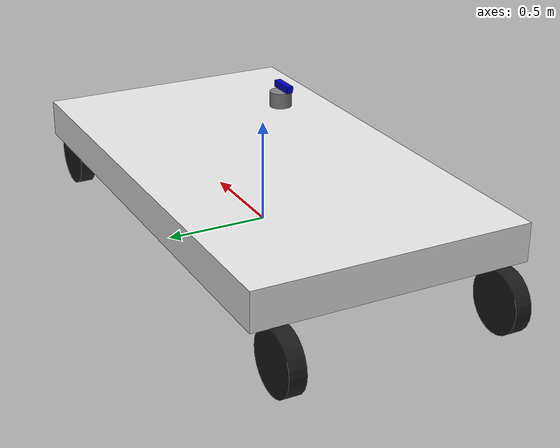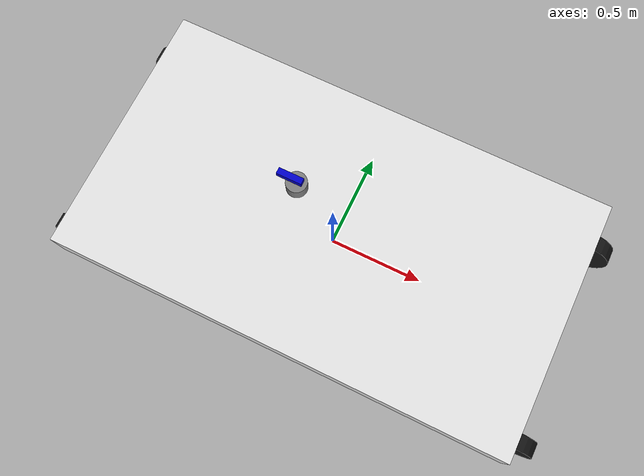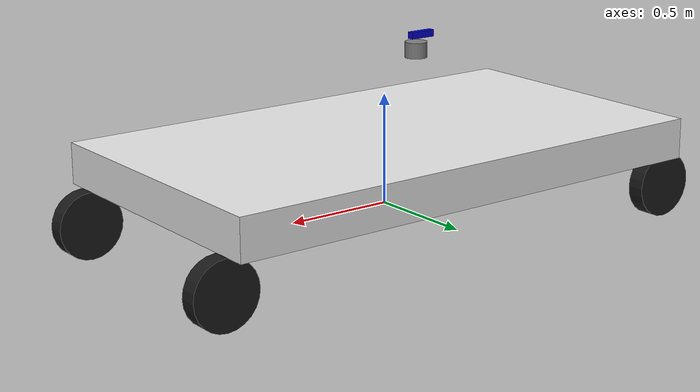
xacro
<?xml version="1.0"?>
<robot name="bee1" xmlns:xacro="http://www.ros.org/wiki/xacro">

  <!-- ── Araç Boyutları (BEE1) ─────────────────────────────── -->
  <xacro:property name="chassis_length" value="2.385"/>
  <xacro:property name="chassis_width"  value="1.330"/>
  <xacro:property name="chassis_height" value="0.185"/>
  <xacro:property name="wheel_radius"   value="0.15"/>
  <xacro:property name="wheel_width"    value="0.08"/>
  <xacro:property name="wheelbase"      value="2.40"/>
  <xacro:property name="track_width"    value="1.073"/>
  <xacro:property name="pi"             value="3.14159265"/>

  <!-- ── Base Link ─────────────────────────────────────────── -->
  <link name="base_link"/>

  <!-- ── Chassis ───────────────────────────────────────────── -->
  <joint name="chassis_joint" type="fixed">
    <parent link="base_link"/>
    <child link="chassis"/>
    <origin xyz="0 0 ${chassis_height/2 + wheel_radius}" rpy="0 0 0"/>
  </joint>

  <link name="chassis">
    <visual>
      <geometry>
        <box size="${chassis_length} ${chassis_width} ${chassis_height}"/>
      </geometry>
      <material name="white">
        <color rgba="0.9 0.9 0.9 1.0"/>
      </material>
    </visual>
    <collision>
      <geometry>
        <box size="${chassis_length} ${chassis_width} ${chassis_height}"/>
      </geometry>
    </collision>
    <inertial>
      <mass value="500.0"/>
      <inertia ixx="100" ixy="0" ixz="0" iyy="100" iyz="0" izz="100"/>
    </inertial>
  </link>

  <!-- ── Tekerlekler Macro ─────────────────────────────────── -->
  <xacro:macro name="wheel" params="name x y">
    <link name="${name}_wheel">
      <visual>
        <origin xyz="0 0 0" rpy="${pi/2} 0 0"/>
        <geometry>
          <cylinder radius="${wheel_radius}" length="${wheel_width}"/>
        </geometry>
        <material name="black">
          <color rgba="0.1 0.1 0.1 1.0"/>
        </material>
      </visual>
      <collision>
        <origin xyz="0 0 0" rpy="${pi/2} 0 0"/>
        <geometry>
          <cylinder radius="${wheel_radius}" length="${wheel_width}"/>
        </geometry>
      </collision>
      <inertial>
        <mass value="10.0"/>
        <inertia ixx="0.1" ixy="0" ixz="0" iyy="0.1" iyz="0" izz="0.1"/>
      </inertial>
    </link>
    <joint name="${name}_wheel_joint" type="continuous">
      <parent link="base_link"/>
      <child link="${name}_wheel"/>
      <origin xyz="${x} ${y} 0" rpy="0 0 0"/>
      <axis xyz="0 1 0"/>
    </joint>
  </xacro:macro>

  <!-- ── 4 Tekerlek ────────────────────────────────────────── -->
  <xacro:wheel name="front_left"  x="${wheelbase/2}"  y="${track_width/2}"/>
  <xacro:wheel name="front_right" x="${wheelbase/2}"  y="${-track_width/2}"/>
  <xacro:wheel name="rear_left"   x="${-wheelbase/2}" y="${track_width/2}"/>
  <xacro:wheel name="rear_right"  x="${-wheelbase/2}" y="${-track_width/2}"/>

  <!-- ── LiDAR (VLP-16) ────────────────────────────────────── -->
  <link name="lidar_frame">
    <visual>
      <geometry>
        <cylinder radius="0.05" length="0.07"/>
      </geometry>
      <material name="grey">
        <color rgba="0.5 0.5 0.5 1.0"/>
      </material>
    </visual>
  </link>
  <joint name="lidar_joint" type="fixed">
    <parent link="chassis"/>
    <child link="lidar_frame"/>
    <origin xyz="-0.177 0.0 0.435" rpy="0 0 0"/>
  </joint>

  <!-- ── ZED2 Kamera ───────────────────────────────────────── -->
  <link name="camera_frame">
    <visual>
      <geometry>
        <box size="0.12 0.03 0.03"/>
      </geometry>
      <material name="blue">
        <color rgba="0.0 0.0 0.8 1.0"/>
      </material>
    </visual>
  </link>
  <joint name="camera_joint" type="fixed">
    <parent link="chassis"/>
    <child link="camera_frame"/>
    <origin xyz="-0.205 0.0 0.500" rpy="0 0 0"/>
  </joint>

  <!-- ── IMU ───────────────────────────────────────────────── -->
  <link name="imu_frame"/>
  <joint name="imu_joint" type="fixed">
    <parent link="chassis"/>
    <child link="imu_frame"/>
    <origin xyz="0.0 0.0 0.0" rpy="0 0 0"/>
  </joint>

  <!-- ── Gazebo: Differential Drive ───────────────────────── -->
  <gazebo>
    <plugin name="differential_drive" filename="libgazebo_ros_diff_drive.so">
      <ros>
        <remapping>cmd_vel:=/cmd_vel</remapping>
        <remapping>odom:=/odom</remapping>
      </ros>
      <left_joint>rear_left_wheel_joint</left_joint>
      <right_joint>rear_right_wheel_joint</right_joint>
      <wheel_separation>${track_width}</wheel_separation>
      <wheel_diameter>${2*wheel_radius}</wheel_diameter>
      <max_wheel_torque>200</max_wheel_torque>
      <max_wheel_acceleration>10.0</max_wheel_acceleration>
      <publish_odom>true</publish_odom>
      <publish_odom_tf>false</publish_odom_tf>
      <publish_wheel_tf>false</publish_wheel_tf>
      <odometry_frame>odom</odometry_frame>
      <robot_base_frame>base_link</robot_base_frame>
    </plugin>
  </gazebo>

  <!-- ── Gazebo: LiDAR Plugin ──────────────────────────────── -->
  <gazebo reference="lidar_frame">
    <sensor type="ray" name="vlp16">
      <always_on>true</always_on>
      <update_rate>10</update_rate>
      <ray>
        <scan>
          <horizontal>
            <samples>360</samples>
            <resolution>1</resolution>
            <min_angle>-3.14159</min_angle>
            <max_angle>3.14159</max_angle>
          </horizontal>
          <vertical>
            <samples>16</samples>
            <resolution>1</resolution>
            <min_angle>-0.2618</min_angle>
            <max_angle>0.2618</max_angle>
          </vertical>
        </scan>
        <range>
          <min>0.1</min>
          <max>100.0</max>
          <resolution>0.01</resolution>
        </range>
      </ray>
      <plugin name="gazebo_ros_velodyne" filename="libgazebo_ros_ray_sensor.so">
        <ros>
          <remapping>~/out:=/velodyne_points</remapping>
        </ros>
        <output_type>sensor_msgs/PointCloud2</output_type>
        <frame_name>lidar_frame</frame_name>
      </plugin>
    </sensor>
  </gazebo>

  <!-- ── Gazebo: ZED2 Kamera Plugin ────────────────────────── -->
  <gazebo reference="camera_frame">
    <sensor type="camera" name="zed2_left">
      <always_on>true</always_on>
      <update_rate>30</update_rate>
      <camera>
        <horizontal_fov>1.9199</horizontal_fov>
        <image>
          <width>1280</width>
          <height>720</height>
          <format>R8G8B8</format>
        </image>
        <clip>
          <near>0.1</near>
          <far>100</far>
        </clip>
      </camera>
      <plugin name="gazebo_ros_camera" filename="libgazebo_ros_camera.so">
        <ros>
          <remapping>image_raw:=/zed2/left/image_raw</remapping>
          <remapping>camera_info:=/zed2/left/camera_info</remapping>
        </ros>
        <frame_name>camera_frame</frame_name>
      </plugin>
    </sensor>
  </gazebo>

  <!-- ── Gazebo: IMU Plugin ─────────────────────────────────── -->
  <gazebo reference="imu_frame">
    <sensor name="imu_sensor" type="imu">
      <always_on>true</always_on>
      <update_rate>100</update_rate>
      <plugin name="gazebo_ros_imu" filename="libgazebo_ros_imu_sensor.so">
        <ros>
          <remapping>~/out:=/imu/data</remapping>
        </ros>
        <initial_orientation_as_reference>false</initial_orientation_as_reference>
      </plugin>
    </sensor>
  </gazebo>

</robot>
